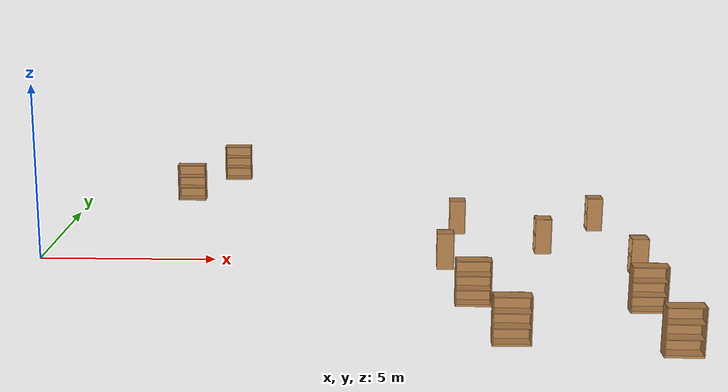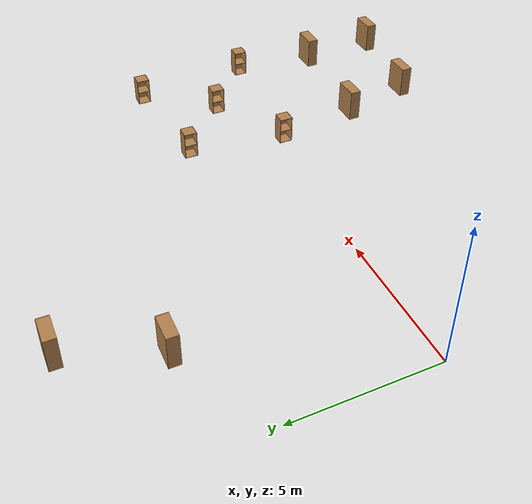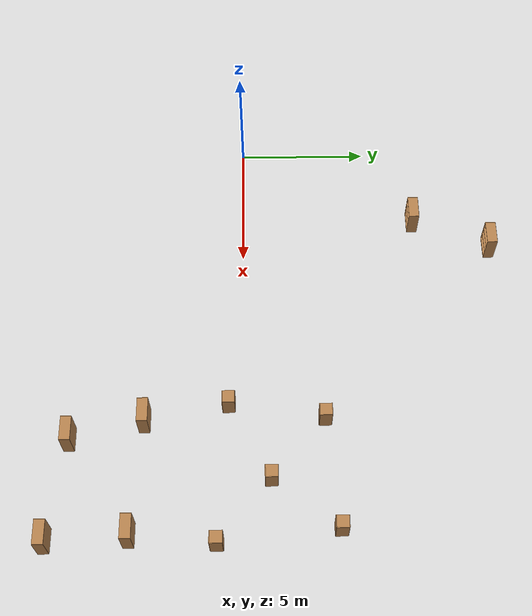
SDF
<sdf version="1.6">
 <world name="default">
  <model name="bookshelf">
   <static>1</static>
   <link name="link">
    <inertial><mass>1</mass></inertial>
    <collision name="back">
     <pose>0 0.005 0.6 0 -0 0</pose>
     <geometry><box><size>0.9 0.01 1.2</size></box></geometry>
    </collision>
    <visual name="visual1">
     <pose>0 0.005 0.6 0 -0 0</pose>
     <geometry><box><size>0.9 0.01 1.2</size></box></geometry>
     <material>
      <script><uri>file://media/materials/scripts/gazebo.material</uri><name>Gazebo/Wood</name></script>
     </material>
    </visual>
    <collision name="left_side">
     <pose>0.45 -0.195 0.6 0 -0 0</pose>
     <geometry><box><size>0.02 0.4 1.2</size></box></geometry>
    </collision>
    <visual name="visual2">
     <pose>0.45 -0.195 0.6 0 -0 0</pose>
     <geometry><box><size>0.02 0.4 1.2</size></box></geometry>
     <material>
      <script><uri>file://media/materials/scripts/gazebo.material</uri><name>Gazebo/Wood</name></script>
     </material>
    </visual>
    <collision name="right_side">
     <pose>-0.45 -0.195 0.6 0 -0 0</pose>
     <geometry><box><size>0.02 0.4 1.2</size></box></geometry>
    </collision>
    <visual name="visual3">
     <pose>-0.45 -0.195 0.6 0 -0 0</pose>
     <geometry><box><size>0.02 0.4 1.2</size></box></geometry>
     <material>
      <script><uri>file://media/materials/scripts/gazebo.material</uri><name>Gazebo/Wood</name></script>
     </material>
    </visual>
    <collision name="bottom">
     <pose>0 -0.195 0.03 0 -0 0</pose>
     <geometry><box><size>0.88 0.4 0.06</size></box></geometry>
    </collision>
    <visual name="visual4">
     <pose>0 -0.195 0.03 0 -0 0</pose>
     <geometry><box><size>0.88 0.4 0.06</size></box></geometry>
     <material>
      <script><uri>file://media/materials/scripts/gazebo.material</uri><name>Gazebo/Wood</name></script>
     </material>
    </visual>
    <collision name="top">
     <pose>0 -0.195 1.19 0 -0 0</pose>
     <geometry><box><size>0.88 0.4 0.02</size></box></geometry>
    </collision>
    <visual name="visual5">
     <pose>0 -0.195 1.19 0 -0 0</pose>
     <geometry><box><size>0.88 0.4 0.02</size></box></geometry>
     <material>
      <script><uri>file://media/materials/scripts/gazebo.material</uri><name>Gazebo/Wood</name></script>
     </material>
    </visual>
    <collision name="low_shelf">
     <pose>0 -0.195 0.43 0 -0 0</pose>
     <geometry><box><size>0.88 0.4 0.02</size></box></geometry>
    </collision>
    <visual name="visual6">
     <pose>0 -0.195 0.43 0 -0 0</pose>
     <geometry><box><size>0.88 0.4 0.02</size></box></geometry>
     <material>
      <script><uri>file://media/materials/scripts/gazebo.material</uri><name>Gazebo/Wood</name></script>
     </material>
    </visual>
    <collision name="high_shelf">
     <pose>0 -0.195 0.8 0 -0 0</pose>
     <geometry><box><size>0.88 0.4 0.02</size></box></geometry>
    </collision>
    <visual name="visual7">
     <pose>0 -0.195 0.8 0 -0 0</pose>
     <geometry><box><size>0.88 0.4 0.02</size></box></geometry>
     <material>
      <script><uri>file://media/materials/scripts/gazebo.material</uri><name>Gazebo/Wood</name></script>
     </material>
    </visual>
   </link>
   <pose>12.0281 -3.44809 0 0 -0 0</pose>
  </model>
  <model name="bookshelf_clone">
   <static>1</static>
   <link name="link">
    <inertial><mass>1</mass></inertial>
    <collision name="back">
     <pose>0 0.005 0.6 0 -0 0</pose>
     <geometry><box><size>0.9 0.01 1.2</size></box></geometry>
    </collision>
    <visual name="visual1">
     <pose>0 0.005 0.6 0 -0 0</pose>
     <geometry><box><size>0.9 0.01 1.2</size></box></geometry>
     <material>
      <script><uri>file://media/materials/scripts/gazebo.material</uri><name>Gazebo/Wood</name></script>
     </material>
    </visual>
    <collision name="left_side">
     <pose>0.45 -0.195 0.6 0 -0 0</pose>
     <geometry><box><size>0.02 0.4 1.2</size></box></geometry>
    </collision>
    <visual name="visual2">
     <pose>0.45 -0.195 0.6 0 -0 0</pose>
     <geometry><box><size>0.02 0.4 1.2</size></box></geometry>
     <material>
      <script><uri>file://media/materials/scripts/gazebo.material</uri><name>Gazebo/Wood</name></script>
     </material>
    </visual>
    <collision name="right_side">
     <pose>-0.45 -0.195 0.6 0 -0 0</pose>
     <geometry><box><size>0.02 0.4 1.2</size></box></geometry>
    </collision>
    <visual name="visual3">
     <pose>-0.45 -0.195 0.6 0 -0 0</pose>
     <geometry><box><size>0.02 0.4 1.2</size></box></geometry>
     <material>
      <script><uri>file://media/materials/scripts/gazebo.material</uri><name>Gazebo/Wood</name></script>
     </material>
    </visual>
    <collision name="bottom">
     <pose>0 -0.195 0.03 0 -0 0</pose>
     <geometry><box><size>0.88 0.4 0.06</size></box></geometry>
    </collision>
    <visual name="visual4">
     <pose>0 -0.195 0.03 0 -0 0</pose>
     <geometry><box><size>0.88 0.4 0.06</size></box></geometry>
     <material>
      <script><uri>file://media/materials/scripts/gazebo.material</uri><name>Gazebo/Wood</name></script>
     </material>
    </visual>
    <collision name="top">
     <pose>0 -0.195 1.19 0 -0 0</pose>
     <geometry><box><size>0.88 0.4 0.02</size></box></geometry>
    </collision>
    <visual name="visual5">
     <pose>0 -0.195 1.19 0 -0 0</pose>
     <geometry><box><size>0.88 0.4 0.02</size></box></geometry>
     <material>
      <script><uri>file://media/materials/scripts/gazebo.material</uri><name>Gazebo/Wood</name></script>
     </material>
    </visual>
    <collision name="low_shelf">
     <pose>0 -0.195 0.43 0 -0 0</pose>
     <geometry><box><size>0.88 0.4 0.02</size></box></geometry>
    </collision>
    <visual name="visual6">
     <pose>0 -0.195 0.43 0 -0 0</pose>
     <geometry><box><size>0.88 0.4 0.02</size></box></geometry>
     <material>
      <script><uri>file://media/materials/scripts/gazebo.material</uri><name>Gazebo/Wood</name></script>
     </material>
    </visual>
    <collision name="high_shelf">
     <pose>0 -0.195 0.8 0 -0 0</pose>
     <geometry><box><size>0.88 0.4 0.02</size></box></geometry>
    </collision>
    <visual name="visual7">
     <pose>0 -0.195 0.8 0 -0 0</pose>
     <geometry><box><size>0.88 0.4 0.02</size></box></geometry>
     <material>
      <script><uri>file://media/materials/scripts/gazebo.material</uri><name>Gazebo/Wood</name></script>
     </material>
    </visual>
   </link>
   <pose>12.7142 -6.19402 0 0 -0 0</pose>
  </model>
  <model name="bookshelf_clone_0">
   <static>1</static>
   <link name="link">
    <inertial><mass>1</mass></inertial>
    <collision name="back">
     <pose>0 0.005 0.6 0 -0 0</pose>
     <geometry><box><size>0.9 0.01 1.2</size></box></geometry>
    </collision>
    <visual name="visual1">
     <pose>0 0.005 0.6 0 -0 0</pose>
     <geometry><box><size>0.9 0.01 1.2</size></box></geometry>
     <material>
      <script><uri>file://media/materials/scripts/gazebo.material</uri><name>Gazebo/Wood</name></script>
     </material>
    </visual>
    <collision name="left_side">
     <pose>0.45 -0.195 0.6 0 -0 0</pose>
     <geometry><box><size>0.02 0.4 1.2</size></box></geometry>
    </collision>
    <visual name="visual2">
     <pose>0.45 -0.195 0.6 0 -0 0</pose>
     <geometry><box><size>0.02 0.4 1.2</size></box></geometry>
     <material>
      <script><uri>file://media/materials/scripts/gazebo.material</uri><name>Gazebo/Wood</name></script>
     </material>
    </visual>
    <collision name="right_side">
     <pose>-0.45 -0.195 0.6 0 -0 0</pose>
     <geometry><box><size>0.02 0.4 1.2</size></box></geometry>
    </collision>
    <visual name="visual3">
     <pose>-0.45 -0.195 0.6 0 -0 0</pose>
     <geometry><box><size>0.02 0.4 1.2</size></box></geometry>
     <material>
      <script><uri>file://media/materials/scripts/gazebo.material</uri><name>Gazebo/Wood</name></script>
     </material>
    </visual>
    <collision name="bottom">
     <pose>0 -0.195 0.03 0 -0 0</pose>
     <geometry><box><size>0.88 0.4 0.06</size></box></geometry>
    </collision>
    <visual name="visual4">
     <pose>0 -0.195 0.03 0 -0 0</pose>
     <geometry><box><size>0.88 0.4 0.06</size></box></geometry>
     <material>
      <script><uri>file://media/materials/scripts/gazebo.material</uri><name>Gazebo/Wood</name></script>
     </material>
    </visual>
    <collision name="top">
     <pose>0 -0.195 1.19 0 -0 0</pose>
     <geometry><box><size>0.88 0.4 0.02</size></box></geometry>
    </collision>
    <visual name="visual5">
     <pose>0 -0.195 1.19 0 -0 0</pose>
     <geometry><box><size>0.88 0.4 0.02</size></box></geometry>
     <material>
      <script><uri>file://media/materials/scripts/gazebo.material</uri><name>Gazebo/Wood</name></script>
     </material>
    </visual>
    <collision name="low_shelf">
     <pose>0 -0.195 0.43 0 -0 0</pose>
     <geometry><box><size>0.88 0.4 0.02</size></box></geometry>
    </collision>
    <visual name="visual6">
     <pose>0 -0.195 0.43 0 -0 0</pose>
     <geometry><box><size>0.88 0.4 0.02</size></box></geometry>
     <material>
      <script><uri>file://media/materials/scripts/gazebo.material</uri><name>Gazebo/Wood</name></script>
     </material>
    </visual>
    <collision name="high_shelf">
     <pose>0 -0.195 0.8 0 -0 0</pose>
     <geometry><box><size>0.88 0.4 0.02</size></box></geometry>
    </collision>
    <visual name="visual7">
     <pose>0 -0.195 0.8 0 -0 0</pose>
     <geometry><box><size>0.88 0.4 0.02</size></box></geometry>
     <material>
      <script><uri>file://media/materials/scripts/gazebo.material</uri><name>Gazebo/Wood</name></script>
     </material>
    </visual>
   </link>
   <pose>16.3675 -3.8301 0 0 -0 0</pose>
  </model>
  <model name="bookshelf_clone_1">
   <static>1</static>
   <link name="link">
    <inertial><mass>1</mass></inertial>
    <collision name="back">
     <pose>0 0.005 0.6 0 -0 0</pose>
     <geometry><box><size>0.9 0.01 1.2</size></box></geometry>
    </collision>
    <visual name="visual1">
     <pose>0 0.005 0.6 0 -0 0</pose>
     <geometry><box><size>0.9 0.01 1.2</size></box></geometry>
     <material>
      <script><uri>file://media/materials/scripts/gazebo.material</uri><name>Gazebo/Wood</name></script>
     </material>
    </visual>
    <collision name="left_side">
     <pose>0.45 -0.195 0.6 0 -0 0</pose>
     <geometry><box><size>0.02 0.4 1.2</size></box></geometry>
    </collision>
    <visual name="visual2">
     <pose>0.45 -0.195 0.6 0 -0 0</pose>
     <geometry><box><size>0.02 0.4 1.2</size></box></geometry>
     <material>
      <script><uri>file://media/materials/scripts/gazebo.material</uri><name>Gazebo/Wood</name></script>
     </material>
    </visual>
    <collision name="right_side">
     <pose>-0.45 -0.195 0.6 0 -0 0</pose>
     <geometry><box><size>0.02 0.4 1.2</size></box></geometry>
    </collision>
    <visual name="visual3">
     <pose>-0.45 -0.195 0.6 0 -0 0</pose>
     <geometry><box><size>0.02 0.4 1.2</size></box></geometry>
     <material>
      <script><uri>file://media/materials/scripts/gazebo.material</uri><name>Gazebo/Wood</name></script>
     </material>
    </visual>
    <collision name="bottom">
     <pose>0 -0.195 0.03 0 -0 0</pose>
     <geometry><box><size>0.88 0.4 0.06</size></box></geometry>
    </collision>
    <visual name="visual4">
     <pose>0 -0.195 0.03 0 -0 0</pose>
     <geometry><box><size>0.88 0.4 0.06</size></box></geometry>
     <material>
      <script><uri>file://media/materials/scripts/gazebo.material</uri><name>Gazebo/Wood</name></script>
     </material>
    </visual>
    <collision name="top">
     <pose>0 -0.195 1.19 0 -0 0</pose>
     <geometry><box><size>0.88 0.4 0.02</size></box></geometry>
    </collision>
    <visual name="visual5">
     <pose>0 -0.195 1.19 0 -0 0</pose>
     <geometry><box><size>0.88 0.4 0.02</size></box></geometry>
     <material>
      <script><uri>file://media/materials/scripts/gazebo.material</uri><name>Gazebo/Wood</name></script>
     </material>
    </visual>
    <collision name="low_shelf">
     <pose>0 -0.195 0.43 0 -0 0</pose>
     <geometry><box><size>0.88 0.4 0.02</size></box></geometry>
    </collision>
    <visual name="visual6">
     <pose>0 -0.195 0.43 0 -0 0</pose>
     <geometry><box><size>0.88 0.4 0.02</size></box></geometry>
     <material>
      <script><uri>file://media/materials/scripts/gazebo.material</uri><name>Gazebo/Wood</name></script>
     </material>
    </visual>
    <collision name="high_shelf">
     <pose>0 -0.195 0.8 0 -0 0</pose>
     <geometry><box><size>0.88 0.4 0.02</size></box></geometry>
    </collision>
    <visual name="visual7">
     <pose>0 -0.195 0.8 0 -0 0</pose>
     <geometry><box><size>0.88 0.4 0.02</size></box></geometry>
     <material>
      <script><uri>file://media/materials/scripts/gazebo.material</uri><name>Gazebo/Wood</name></script>
     </material>
    </visual>
   </link>
   <pose>16.5361 -6.80615 0 0 -0 0</pose>
  </model>
  <model name="cabinet">
   <static>1</static>
   <link name="cabinet_bottom_plate">
    <inertial>
     <pose>0 0 -1 0 -0 0</pose>
     <inertia><ixx>2.05</ixx><ixy>0</ixy><ixz>0</ixz><iyy>2.05</iyy><iyz>0</iyz><izz>2.05</izz></inertia>
     <mass>25</mass>
    </inertial>
    <collision name="cabinet_bottom_plate_geom">
     <pose>0 0 0.01 0 -0 0</pose>
     <geometry><box><size>0.45 0.45 0.02</size></box></geometry>
    </collision>
    <visual name="cabinet_bottom_plate_geom_visual">
     <pose>0 0 0.01 0 -0 0</pose>
     <geometry><box><size>0.45 0.45 0.02</size></box></geometry>
     <material>
      <script><uri>file://media/materials/scripts/gazebo.material</uri><name>Gazebo/Wood</name></script>
     </material>
    </visual>
    <collision name="cabinet_bottom_plate_geom_cabinet_back_plate">
     <pose>0.235 0 0.51 0 -0 0</pose>
     <geometry><box><size>0.02 0.45 1.02</size></box></geometry>
    </collision>
    <visual name="cabinet_bottom_plate_geom_cabinet_back_plate_visual">
     <pose>0.235 0 0.51 0 -0 0</pose>
     <geometry><box><size>0.02 0.45 1.02</size></box></geometry>
     <material>
      <script><uri>file://media/materials/scripts/gazebo.material</uri><name>Gazebo/Wood</name></script>
     </material>
    </visual>
    <collision name="cabinet_bottom_plate_geom_cabinet_left_plate">
     <pose>0 0.235 0.51 0 -0 0</pose>
     <geometry><box><size>0.45 0.02 1.02</size></box></geometry>
    </collision>
    <visual name="cabinet_bottom_plate_geom_cabinet_left_plate_visual">
     <pose>0 0.235 0.51 0 -0 0</pose>
     <geometry><box><size>0.45 0.02 1.02</size></box></geometry>
     <material>
      <script><uri>file://media/materials/scripts/gazebo.material</uri><name>Gazebo/Wood</name></script>
     </material>
    </visual>
    <collision name="cabinet_bottom_plate_geom_cabinet_middle_plate">
     <pose>0 0 0.51 0 -0 0</pose>
     <geometry><box><size>0.45 0.45 0.02</size></box></geometry>
    </collision>
    <visual name="cabinet_bottom_plate_geom_cabinet_middle_plate_visual">
     <pose>0 0 0.51 0 -0 0</pose>
     <geometry><box><size>0.45 0.45 0.02</size></box></geometry>
     <material>
      <script><uri>file://media/materials/scripts/gazebo.material</uri><name>Gazebo/Wood</name></script>
     </material>
    </visual>
    <collision name="cabinet_bottom_plate_geom_cabinet_right_plate">
     <pose>0 -0.235 0.51 0 -0 0</pose>
     <geometry><box><size>0.45 0.02 1.02</size></box></geometry>
    </collision>
    <visual name="cabinet_bottom_plate_geom_cabinet_right_plate_visual">
     <pose>0 -0.235 0.51 0 -0 0</pose>
     <geometry><box><size>0.45 0.02 1.02</size></box></geometry>
     <material>
      <script><uri>file://media/materials/scripts/gazebo.material</uri><name>Gazebo/Wood</name></script>
     </material>
    </visual>
    <collision name="cabinet_bottom_plate_geom_cabinet_top_plate">
     <pose>0 0 1.01 0 -0 0</pose>
     <geometry><box><size>0.45 0.45 0.02</size></box></geometry>
    </collision>
    <visual name="cabinet_bottom_plate_geom_cabinet_top_plate_visual">
     <pose>0 0 1.01 0 -0 0</pose>
     <geometry><box><size>0.45 0.45 0.02</size></box></geometry>
     <material>
      <script><uri>file://media/materials/scripts/gazebo.material</uri><name>Gazebo/Wood</name></script>
     </material>
    </visual>
   </link>
   <pose>12.0336 3.079 0 0 -0 0</pose>
  </model>
  <model name="cabinet_clone">
   <static>1</static>
   <link name="cabinet_bottom_plate">
    <inertial>
     <pose>0 0 -1 0 -0 0</pose>
     <inertia><ixx>2.05</ixx><ixy>0</ixy><ixz>0</ixz><iyy>2.05</iyy><iyz>0</iyz><izz>2.05</izz></inertia>
     <mass>25</mass>
    </inertial>
    <collision name="cabinet_bottom_plate_geom">
     <pose>0 0 0.01 0 -0 0</pose>
     <geometry><box><size>0.45 0.45 0.02</size></box></geometry>
    </collision>
    <visual name="cabinet_bottom_plate_geom_visual">
     <pose>0 0 0.01 0 -0 0</pose>
     <geometry><box><size>0.45 0.45 0.02</size></box></geometry>
     <material>
      <script><uri>file://media/materials/scripts/gazebo.material</uri><name>Gazebo/Wood</name></script>
     </material>
    </visual>
    <collision name="cabinet_bottom_plate_geom_cabinet_back_plate">
     <pose>0.235 0 0.51 0 -0 0</pose>
     <geometry><box><size>0.02 0.45 1.02</size></box></geometry>
    </collision>
    <visual name="cabinet_bottom_plate_geom_cabinet_back_plate_visual">
     <pose>0.235 0 0.51 0 -0 0</pose>
     <geometry><box><size>0.02 0.45 1.02</size></box></geometry>
     <material>
      <script><uri>file://media/materials/scripts/gazebo.material</uri><name>Gazebo/Wood</name></script>
     </material>
    </visual>
    <collision name="cabinet_bottom_plate_geom_cabinet_left_plate">
     <pose>0 0.235 0.51 0 -0 0</pose>
     <geometry><box><size>0.45 0.02 1.02</size></box></geometry>
    </collision>
    <visual name="cabinet_bottom_plate_geom_cabinet_left_plate_visual">
     <pose>0 0.235 0.51 0 -0 0</pose>
     <geometry><box><size>0.45 0.02 1.02</size></box></geometry>
     <material>
      <script><uri>file://media/materials/scripts/gazebo.material</uri><name>Gazebo/Wood</name></script>
     </material>
    </visual>
    <collision name="cabinet_bottom_plate_geom_cabinet_middle_plate">
     <pose>0 0 0.51 0 -0 0</pose>
     <geometry><box><size>0.45 0.45 0.02</size></box></geometry>
    </collision>
    <visual name="cabinet_bottom_plate_geom_cabinet_middle_plate_visual">
     <pose>0 0 0.51 0 -0 0</pose>
     <geometry><box><size>0.45 0.45 0.02</size></box></geometry>
     <material>
      <script><uri>file://media/materials/scripts/gazebo.material</uri><name>Gazebo/Wood</name></script>
     </material>
    </visual>
    <collision name="cabinet_bottom_plate_geom_cabinet_right_plate">
     <pose>0 -0.235 0.51 0 -0 0</pose>
     <geometry><box><size>0.45 0.02 1.02</size></box></geometry>
    </collision>
    <visual name="cabinet_bottom_plate_geom_cabinet_right_plate_visual">
     <pose>0 -0.235 0.51 0 -0 0</pose>
     <geometry><box><size>0.45 0.02 1.02</size></box></geometry>
     <material>
      <script><uri>file://media/materials/scripts/gazebo.material</uri><name>Gazebo/Wood</name></script>
     </material>
    </visual>
    <collision name="cabinet_bottom_plate_geom_cabinet_top_plate">
     <pose>0 0 1.01 0 -0 0</pose>
     <geometry><box><size>0.45 0.45 0.02</size></box></geometry>
    </collision>
    <visual name="cabinet_bottom_plate_geom_cabinet_top_plate_visual">
     <pose>0 0 1.01 0 -0 0</pose>
     <geometry><box><size>0.45 0.45 0.02</size></box></geometry>
     <material>
      <script><uri>file://media/materials/scripts/gazebo.material</uri><name>Gazebo/Wood</name></script>
     </material>
    </visual>
   </link>
   <pose>16.256 3.52339 0 0 -0 0</pose>
  </model>
  <model name="cabinet_clone_0">
   <static>1</static>
   <link name="cabinet_bottom_plate">
    <inertial>
     <pose>0 0 -1 0 -0 0</pose>
     <inertia><ixx>2.05</ixx><ixy>0</ixy><ixz>0</ixz><iyy>2.05</iyy><iyz>0</iyz><izz>2.05</izz></inertia>
     <mass>25</mass>
    </inertial>
    <collision name="cabinet_bottom_plate_geom">
     <pose>0 0 0.01 0 -0 0</pose>
     <geometry><box><size>0.45 0.45 0.02</size></box></geometry>
    </collision>
    <visual name="cabinet_bottom_plate_geom_visual">
     <pose>0 0 0.01 0 -0 0</pose>
     <geometry><box><size>0.45 0.45 0.02</size></box></geometry>
     <material>
      <script><uri>file://media/materials/scripts/gazebo.material</uri><name>Gazebo/Wood</name></script>
     </material>
    </visual>
    <collision name="cabinet_bottom_plate_geom_cabinet_back_plate">
     <pose>0.235 0 0.51 0 -0 0</pose>
     <geometry><box><size>0.02 0.45 1.02</size></box></geometry>
    </collision>
    <visual name="cabinet_bottom_plate_geom_cabinet_back_plate_visual">
     <pose>0.235 0 0.51 0 -0 0</pose>
     <geometry><box><size>0.02 0.45 1.02</size></box></geometry>
     <material>
      <script><uri>file://media/materials/scripts/gazebo.material</uri><name>Gazebo/Wood</name></script>
     </material>
    </visual>
    <collision name="cabinet_bottom_plate_geom_cabinet_left_plate">
     <pose>0 0.235 0.51 0 -0 0</pose>
     <geometry><box><size>0.45 0.02 1.02</size></box></geometry>
    </collision>
    <visual name="cabinet_bottom_plate_geom_cabinet_left_plate_visual">
     <pose>0 0.235 0.51 0 -0 0</pose>
     <geometry><box><size>0.45 0.02 1.02</size></box></geometry>
     <material>
      <script><uri>file://media/materials/scripts/gazebo.material</uri><name>Gazebo/Wood</name></script>
     </material>
    </visual>
    <collision name="cabinet_bottom_plate_geom_cabinet_middle_plate">
     <pose>0 0 0.51 0 -0 0</pose>
     <geometry><box><size>0.45 0.45 0.02</size></box></geometry>
    </collision>
    <visual name="cabinet_bottom_plate_geom_cabinet_middle_plate_visual">
     <pose>0 0 0.51 0 -0 0</pose>
     <geometry><box><size>0.45 0.45 0.02</size></box></geometry>
     <material>
      <script><uri>file://media/materials/scripts/gazebo.material</uri><name>Gazebo/Wood</name></script>
     </material>
    </visual>
    <collision name="cabinet_bottom_plate_geom_cabinet_right_plate">
     <pose>0 -0.235 0.51 0 -0 0</pose>
     <geometry><box><size>0.45 0.02 1.02</size></box></geometry>
    </collision>
    <visual name="cabinet_bottom_plate_geom_cabinet_right_plate_visual">
     <pose>0 -0.235 0.51 0 -0 0</pose>
     <geometry><box><size>0.45 0.02 1.02</size></box></geometry>
     <material>
      <script><uri>file://media/materials/scripts/gazebo.material</uri><name>Gazebo/Wood</name></script>
     </material>
    </visual>
    <collision name="cabinet_bottom_plate_geom_cabinet_top_plate">
     <pose>0 0 1.01 0 -0 0</pose>
     <geometry><box><size>0.45 0.45 0.02</size></box></geometry>
    </collision>
    <visual name="cabinet_bottom_plate_geom_cabinet_top_plate_visual">
     <pose>0 0 1.01 0 -0 0</pose>
     <geometry><box><size>0.45 0.45 0.02</size></box></geometry>
     <material>
      <script><uri>file://media/materials/scripts/gazebo.material</uri><name>Gazebo/Wood</name></script>
     </material>
    </visual>
   </link>
   <pose>14.3735 1.06192 0 0 -0 0</pose>
  </model>
  <model name="cabinet_clone_1">
   <static>1</static>
   <link name="cabinet_bottom_plate">
    <inertial>
     <pose>0 0 -1 0 -0 0</pose>
     <inertia><ixx>2.05</ixx><ixy>0</ixy><ixz>0</ixz><iyy>2.05</iyy><iyz>0</iyz><izz>2.05</izz></inertia>
     <mass>25</mass>
    </inertial>
    <collision name="cabinet_bottom_plate_geom">
     <pose>0 0 0.01 0 -0 0</pose>
     <geometry><box><size>0.45 0.45 0.02</size></box></geometry>
    </collision>
    <visual name="cabinet_bottom_plate_geom_visual">
     <pose>0 0 0.01 0 -0 0</pose>
     <geometry><box><size>0.45 0.45 0.02</size></box></geometry>
     <material>
      <script><uri>file://media/materials/scripts/gazebo.material</uri><name>Gazebo/Wood</name></script>
     </material>
    </visual>
    <collision name="cabinet_bottom_plate_geom_cabinet_back_plate">
     <pose>0.235 0 0.51 0 -0 0</pose>
     <geometry><box><size>0.02 0.45 1.02</size></box></geometry>
    </collision>
    <visual name="cabinet_bottom_plate_geom_cabinet_back_plate_visual">
     <pose>0.235 0 0.51 0 -0 0</pose>
     <geometry><box><size>0.02 0.45 1.02</size></box></geometry>
     <material>
      <script><uri>file://media/materials/scripts/gazebo.material</uri><name>Gazebo/Wood</name></script>
     </material>
    </visual>
    <collision name="cabinet_bottom_plate_geom_cabinet_left_plate">
     <pose>0 0.235 0.51 0 -0 0</pose>
     <geometry><box><size>0.45 0.02 1.02</size></box></geometry>
    </collision>
    <visual name="cabinet_bottom_plate_geom_cabinet_left_plate_visual">
     <pose>0 0.235 0.51 0 -0 0</pose>
     <geometry><box><size>0.45 0.02 1.02</size></box></geometry>
     <material>
      <script><uri>file://media/materials/scripts/gazebo.material</uri><name>Gazebo/Wood</name></script>
     </material>
    </visual>
    <collision name="cabinet_bottom_plate_geom_cabinet_middle_plate">
     <pose>0 0 0.51 0 -0 0</pose>
     <geometry><box><size>0.45 0.45 0.02</size></box></geometry>
    </collision>
    <visual name="cabinet_bottom_plate_geom_cabinet_middle_plate_visual">
     <pose>0 0 0.51 0 -0 0</pose>
     <geometry><box><size>0.45 0.45 0.02</size></box></geometry>
     <material>
      <script><uri>file://media/materials/scripts/gazebo.material</uri><name>Gazebo/Wood</name></script>
     </material>
    </visual>
    <collision name="cabinet_bottom_plate_geom_cabinet_right_plate">
     <pose>0 -0.235 0.51 0 -0 0</pose>
     <geometry><box><size>0.45 0.02 1.02</size></box></geometry>
    </collision>
    <visual name="cabinet_bottom_plate_geom_cabinet_right_plate_visual">
     <pose>0 -0.235 0.51 0 -0 0</pose>
     <geometry><box><size>0.45 0.02 1.02</size></box></geometry>
     <material>
      <script><uri>file://media/materials/scripts/gazebo.material</uri><name>Gazebo/Wood</name></script>
     </material>
    </visual>
    <collision name="cabinet_bottom_plate_geom_cabinet_top_plate">
     <pose>0 0 1.01 0 -0 0</pose>
     <geometry><box><size>0.45 0.45 0.02</size></box></geometry>
    </collision>
    <visual name="cabinet_bottom_plate_geom_cabinet_top_plate_visual">
     <pose>0 0 1.01 0 -0 0</pose>
     <geometry><box><size>0.45 0.45 0.02</size></box></geometry>
     <material>
      <script><uri>file://media/materials/scripts/gazebo.material</uri><name>Gazebo/Wood</name></script>
     </material>
    </visual>
   </link>
   <pose>16.7378 -0.902358 0 0 -0 0</pose>
  </model>
  <model name="cabinet_clone_2">
   <static>1</static>
   <link name="cabinet_bottom_plate">
    <inertial>
     <pose>0 0 -1 0 -0 0</pose>
     <inertia><ixx>2.05</ixx><ixy>0</ixy><ixz>0</ixz><iyy>2.05</iyy><iyz>0</iyz><izz>2.05</izz></inertia>
     <mass>25</mass>
    </inertial>
    <collision name="cabinet_bottom_plate_geom">
     <pose>0 0 0.01 0 -0 0</pose>
     <geometry><box><size>0.45 0.45 0.02</size></box></geometry>
    </collision>
    <visual name="cabinet_bottom_plate_geom_visual">
     <pose>0 0 0.01 0 -0 0</pose>
     <geometry><box><size>0.45 0.45 0.02</size></box></geometry>
     <material>
      <script><uri>file://media/materials/scripts/gazebo.material</uri><name>Gazebo/Wood</name></script>
     </material>
    </visual>
    <collision name="cabinet_bottom_plate_geom_cabinet_back_plate">
     <pose>0.235 0 0.51 0 -0 0</pose>
     <geometry><box><size>0.02 0.45 1.02</size></box></geometry>
    </collision>
    <visual name="cabinet_bottom_plate_geom_cabinet_back_plate_visual">
     <pose>0.235 0 0.51 0 -0 0</pose>
     <geometry><box><size>0.02 0.45 1.02</size></box></geometry>
     <material>
      <script><uri>file://media/materials/scripts/gazebo.material</uri><name>Gazebo/Wood</name></script>
     </material>
    </visual>
    <collision name="cabinet_bottom_plate_geom_cabinet_left_plate">
     <pose>0 0.235 0.51 0 -0 0</pose>
     <geometry><box><size>0.45 0.02 1.02</size></box></geometry>
    </collision>
    <visual name="cabinet_bottom_plate_geom_cabinet_left_plate_visual">
     <pose>0 0.235 0.51 0 -0 0</pose>
     <geometry><box><size>0.45 0.02 1.02</size></box></geometry>
     <material>
      <script><uri>file://media/materials/scripts/gazebo.material</uri><name>Gazebo/Wood</name></script>
     </material>
    </visual>
    <collision name="cabinet_bottom_plate_geom_cabinet_middle_plate">
     <pose>0 0 0.51 0 -0 0</pose>
     <geometry><box><size>0.45 0.45 0.02</size></box></geometry>
    </collision>
    <visual name="cabinet_bottom_plate_geom_cabinet_middle_plate_visual">
     <pose>0 0 0.51 0 -0 0</pose>
     <geometry><box><size>0.45 0.45 0.02</size></box></geometry>
     <material>
      <script><uri>file://media/materials/scripts/gazebo.material</uri><name>Gazebo/Wood</name></script>
     </material>
    </visual>
    <collision name="cabinet_bottom_plate_geom_cabinet_right_plate">
     <pose>0 -0.235 0.51 0 -0 0</pose>
     <geometry><box><size>0.45 0.02 1.02</size></box></geometry>
    </collision>
    <visual name="cabinet_bottom_plate_geom_cabinet_right_plate_visual">
     <pose>0 -0.235 0.51 0 -0 0</pose>
     <geometry><box><size>0.45 0.02 1.02</size></box></geometry>
     <material>
      <script><uri>file://media/materials/scripts/gazebo.material</uri><name>Gazebo/Wood</name></script>
     </material>
    </visual>
    <collision name="cabinet_bottom_plate_geom_cabinet_top_plate">
     <pose>0 0 1.01 0 -0 0</pose>
     <geometry><box><size>0.45 0.45 0.02</size></box></geometry>
    </collision>
    <visual name="cabinet_bottom_plate_geom_cabinet_top_plate_visual">
     <pose>0 0 1.01 0 -0 0</pose>
     <geometry><box><size>0.45 0.45 0.02</size></box></geometry>
     <material>
      <script><uri>file://media/materials/scripts/gazebo.material</uri><name>Gazebo/Wood</name></script>
     </material>
    </visual>
   </link>
   <pose>11.4773 -0.511648 0 0 -0 0</pose>
  </model>
  <model name="bookshelf_clone_clone_0">
   <static>1</static>
   <link name="link">
    <inertial><mass>1</mass></inertial>
    <collision name="back">
     <pose>0 0.005 0.6 0 -0 0</pose>
     <geometry><box><size>0.9 0.01 1.2</size></box></geometry>
    </collision>
    <visual name="visual1">
     <pose>0 0.005 0.6 0 -0 0</pose>
     <geometry><box><size>0.9 0.01 1.2</size></box></geometry>
     <material>
      <script><uri>file://media/materials/scripts/gazebo.material</uri><name>Gazebo/Wood</name></script>
     </material>
    </visual>
    <collision name="left_side">
     <pose>0.45 -0.195 0.6 0 -0 0</pose>
     <geometry><box><size>0.02 0.4 1.2</size></box></geometry>
    </collision>
    <visual name="visual2">
     <pose>0.45 -0.195 0.6 0 -0 0</pose>
     <geometry><box><size>0.02 0.4 1.2</size></box></geometry>
     <material>
      <script><uri>file://media/materials/scripts/gazebo.material</uri><name>Gazebo/Wood</name></script>
     </material>
    </visual>
    <collision name="right_side">
     <pose>-0.45 -0.195 0.6 0 -0 0</pose>
     <geometry><box><size>0.02 0.4 1.2</size></box></geometry>
    </collision>
    <visual name="visual3">
     <pose>-0.45 -0.195 0.6 0 -0 0</pose>
     <geometry><box><size>0.02 0.4 1.2</size></box></geometry>
     <material>
      <script><uri>file://media/materials/scripts/gazebo.material</uri><name>Gazebo/Wood</name></script>
     </material>
    </visual>
    <collision name="bottom">
     <pose>0 -0.195 0.03 0 -0 0</pose>
     <geometry><box><size>0.88 0.4 0.06</size></box></geometry>
    </collision>
    <visual name="visual4">
     <pose>0 -0.195 0.03 0 -0 0</pose>
     <geometry><box><size>0.88 0.4 0.06</size></box></geometry>
     <material>
      <script><uri>file://media/materials/scripts/gazebo.material</uri><name>Gazebo/Wood</name></script>
     </material>
    </visual>
    <collision name="top">
     <pose>0 -0.195 1.19 0 -0 0</pose>
     <geometry><box><size>0.88 0.4 0.02</size></box></geometry>
    </collision>
    <visual name="visual5">
     <pose>0 -0.195 1.19 0 -0 0</pose>
     <geometry><box><size>0.88 0.4 0.02</size></box></geometry>
     <material>
      <script><uri>file://media/materials/scripts/gazebo.material</uri><name>Gazebo/Wood</name></script>
     </material>
    </visual>
    <collision name="low_shelf">
     <pose>0 -0.195 0.43 0 -0 0</pose>
     <geometry><box><size>0.88 0.4 0.02</size></box></geometry>
    </collision>
    <visual name="visual6">
     <pose>0 -0.195 0.43 0 -0 0</pose>
     <geometry><box><size>0.88 0.4 0.02</size></box></geometry>
     <material>
      <script><uri>file://media/materials/scripts/gazebo.material</uri><name>Gazebo/Wood</name></script>
     </material>
    </visual>
    <collision name="high_shelf">
     <pose>0 -0.195 0.8 0 -0 0</pose>
     <geometry><box><size>0.88 0.4 0.02</size></box></geometry>
    </collision>
    <visual name="visual7">
     <pose>0 -0.195 0.8 0 -0 0</pose>
     <geometry><box><size>0.88 0.4 0.02</size></box></geometry>
     <material>
      <script><uri>file://media/materials/scripts/gazebo.material</uri><name>Gazebo/Wood</name></script>
     </material>
    </visual>
   </link>
   <pose>3.37992 7.07289 0 0 -0 0</pose>
  </model>
  <model name="bookshelf_clone_clone_1">
   <static>1</static>
   <link name="link">
    <inertial><mass>1</mass></inertial>
    <collision name="back">
     <pose>0 0.005 0.6 0 -0 0</pose>
     <geometry><box><size>0.9 0.01 1.2</size></box></geometry>
    </collision>
    <visual name="visual1">
     <pose>0 0.005 0.6 0 -0 0</pose>
     <geometry><box><size>0.9 0.01 1.2</size></box></geometry>
     <material>
      <script><uri>file://media/materials/scripts/gazebo.material</uri><name>Gazebo/Wood</name></script>
     </material>
    </visual>
    <collision name="left_side">
     <pose>0.45 -0.195 0.6 0 -0 0</pose>
     <geometry><box><size>0.02 0.4 1.2</size></box></geometry>
    </collision>
    <visual name="visual2">
     <pose>0.45 -0.195 0.6 0 -0 0</pose>
     <geometry><box><size>0.02 0.4 1.2</size></box></geometry>
     <material>
      <script><uri>file://media/materials/scripts/gazebo.material</uri><name>Gazebo/Wood</name></script>
     </material>
    </visual>
    <collision name="right_side">
     <pose>-0.45 -0.195 0.6 0 -0 0</pose>
     <geometry><box><size>0.02 0.4 1.2</size></box></geometry>
    </collision>
    <visual name="visual3">
     <pose>-0.45 -0.195 0.6 0 -0 0</pose>
     <geometry><box><size>0.02 0.4 1.2</size></box></geometry>
     <material>
      <script><uri>file://media/materials/scripts/gazebo.material</uri><name>Gazebo/Wood</name></script>
     </material>
    </visual>
    <collision name="bottom">
     <pose>0 -0.195 0.03 0 -0 0</pose>
     <geometry><box><size>0.88 0.4 0.06</size></box></geometry>
    </collision>
    <visual name="visual4">
     <pose>0 -0.195 0.03 0 -0 0</pose>
     <geometry><box><size>0.88 0.4 0.06</size></box></geometry>
     <material>
      <script><uri>file://media/materials/scripts/gazebo.material</uri><name>Gazebo/Wood</name></script>
     </material>
    </visual>
    <collision name="top">
     <pose>0 -0.195 1.19 0 -0 0</pose>
     <geometry><box><size>0.88 0.4 0.02</size></box></geometry>
    </collision>
    <visual name="visual5">
     <pose>0 -0.195 1.19 0 -0 0</pose>
     <geometry><box><size>0.88 0.4 0.02</size></box></geometry>
     <material>
      <script><uri>file://media/materials/scripts/gazebo.material</uri><name>Gazebo/Wood</name></script>
     </material>
    </visual>
    <collision name="low_shelf">
     <pose>0 -0.195 0.43 0 -0 0</pose>
     <geometry><box><size>0.88 0.4 0.02</size></box></geometry>
    </collision>
    <visual name="visual6">
     <pose>0 -0.195 0.43 0 -0 0</pose>
     <geometry><box><size>0.88 0.4 0.02</size></box></geometry>
     <material>
      <script><uri>file://media/materials/scripts/gazebo.material</uri><name>Gazebo/Wood</name></script>
     </material>
    </visual>
    <collision name="high_shelf">
     <pose>0 -0.195 0.8 0 -0 0</pose>
     <geometry><box><size>0.88 0.4 0.02</size></box></geometry>
    </collision>
    <visual name="visual7">
     <pose>0 -0.195 0.8 0 -0 0</pose>
     <geometry><box><size>0.88 0.4 0.02</size></box></geometry>
     <material>
      <script><uri>file://media/materials/scripts/gazebo.material</uri><name>Gazebo/Wood</name></script>
     </material>
    </visual>
   </link>
   <pose>4.62243 10.0868 0 0 -0 0</pose>
  </model>
 </world>
</sdf>
